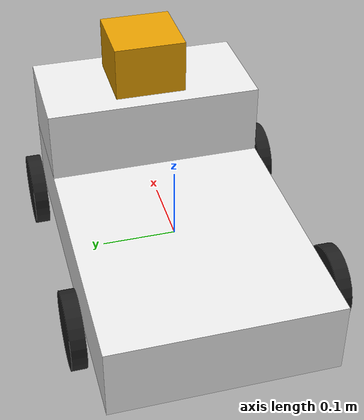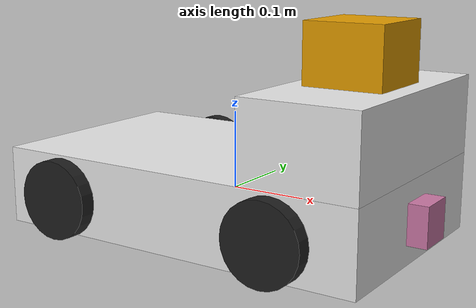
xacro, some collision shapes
<?xml version='1.0'?>

<robot name="my_robot" xmlns:xacro="http://www.ros.org/wiki/xacro">
<xacro:include filename="$(find my_robot)/urdf/my_robot.gazebo" />

  <gazebo reference="chassis">
    <material>Gazebo/White</material>
  </gazebo>

  <gazebo reference="camera">
    <material>Gazebo/Grey</material>
  </gazebo>

  <gazebo reference="left_front_wheel">
    <material>Gazebo/Black</material>
  </gazebo>

  <gazebo reference="right_front_wheel">
    <material>Gazebo/Black</material>
  </gazebo>

  <gazebo reference="left_rear_wheel">
    <material>Gazebo/Black</material>
  </gazebo>

  <gazebo reference="right_rear_wheel">
    <material>Gazebo/Black</material>
  </gazebo>

  <link name="robot_footprint"></link>

  <joint name="robot_footprint_joint" type="fixed">
    <origin xyz="0 0 0" rpy="0 0 0" />
    <parent link="robot_footprint"/>
    <child link="chassis" />
  </joint>

  <link name='chassis'>
    <pose>0 0 0.1 0 0 0</pose>

    <inertial>
      <mass value="15.0"/>
      <origin xyz="0.0 0 0" rpy=" 0 0 0"/>
      <inertia
          ixx="0.1" ixy="0" ixz="0"
          iyy="0.1" iyz="0"
          izz="0.1"
      />
    </inertial>

    <collision name='chassis_collision'>
      <origin xyz="0 0 0" rpy=" 0 0 0"/>
      <geometry>
        <box size=".5 .3 .1"/>
      </geometry>
    </collision>

    <visual name='chassis_visual'>
      <origin xyz="0 0 0" rpy=" 0 0 0"/>
      <geometry>
        <box size=".5 .3 .1"/>
      </geometry>
    </visual>

    <collision name='top_collision'>
      <origin xyz=".175 0 .1" rpy=" 0 0 0"/>
      <geometry>
        <box size=".15 .3 .1"/>
      </geometry>
    </collision>

    <visual name='top_visual'>
      <origin xyz=".175 0 .1" rpy=" 0 0 0"/>
      <geometry>
        <box size=".15 .3 .1"/>
      </geometry>
    </visual>
  </link>

  <link name='left_front_wheel'>
    <inertial>
      <mass value="5.0"/>
      <origin xyz="0.0 0 0" rpy=" 0 1.5707 1.5707"/>
      <inertia
          ixx="0.1" ixy="0" ixz="0"
          iyy="0.1" iyz="0"
          izz="0.1"
      />
    </inertial>

    <collision name='left_front_wheel_collision'>
      <origin xyz="0 0 0" rpy=" 0 1.5707 1.5707"/>
      <geometry>
        <cylinder length="0.02" radius="0.05"/>
      </geometry>
    </collision>

    <visual name='left_front_wheel_visual'>
      <origin xyz="0 0 0" rpy=" 0 1.5705 1.5707"/>
      <geometry>
        <cylinder length="0.02" radius="0.05"/>
      </geometry>
    </visual>
  </link>

  <joint type="continuous" name="left_front_wheel_hinge">
    <origin xyz="0.15 0.17 0" rpy="0 0 0"/>
    <child link="left_front_wheel"/>
    <parent link="chassis"/>
    <axis xyz="0 1 0" rpy="0 0 0"/>
    <limit effort="10000" velocity="1000"/>
    <dynamics damping="1.0" friction="1.0"/>
  </joint>

  <link name='left_rear_wheel'>
    <inertial>
      <mass value="5.0"/>
      <origin xyz="0.0 0 0" rpy=" 0 1.5707 1.5707"/>
      <inertia
          ixx="0.1" ixy="0" ixz="0"
          iyy="0.1" iyz="0"
          izz="0.1"
      />
    </inertial>

    <collision name='left_rear_wheel_collision'>
      <origin xyz="0 0 0" rpy=" 0 1.5707 1.5707"/>
      <geometry>
        <cylinder length="0.02" radius="0.05"/>
      </geometry>
    </collision>

    <visual name='left_rear_wheel_visual'>
      <origin xyz="0 0 0" rpy=" 0 1.5705 1.5707"/>
      <geometry>
        <cylinder length="0.02" radius="0.05"/>
      </geometry>
    </visual>
  </link>

  <joint type="continuous" name="left_rear_wheel_hinge">
    <origin xyz="-0.15 0.17 0" rpy="0 0 0"/>
    <child link="left_rear_wheel"/>
    <parent link="chassis"/>
    <axis xyz="0 1 0" rpy="0 0 0"/>
    <limit effort="10000" velocity="1000"/>
    <dynamics damping="1.0" friction="1.0"/>
  </joint>

  <link name='right_front_wheel'>
    <inertial>
      <mass value="5.0"/>
      <origin xyz="0.0 0 0" rpy=" 0 1.5707 1.5707"/>
      <inertia
          ixx="0.1" ixy="0" ixz="0"
          iyy="0.1" iyz="0"
          izz="0.1"
      />
    </inertial>

    <collision name='right_front_wheel_collision'>
      <origin xyz="0 0 0" rpy=" 0 1.5707 1.5707"/>
      <geometry>
        <cylinder length="0.02" radius="0.05"/>
      </geometry>
    </collision>

    <visual name='right_front_wheel_visual'>
      <origin xyz="0 0 0" rpy=" 0 1.5705 1.5707"/>
      <geometry>
        <cylinder length="0.02" radius="0.05"/>
      </geometry>
    </visual>
  </link>

  <joint type="continuous" name="right_front_wheel_hinge">
    <origin xyz="0.15 -0.17 0" rpy="0 0 0"/>
    <child link="right_front_wheel"/>
    <parent link="chassis"/>
    <axis xyz="0 1 0" rpy="0 0 0"/>
    <limit effort="10000" velocity="1000"/>
    <dynamics damping="1.0" friction="1.0"/>
  </joint>

  <link name='right_rear_wheel'>
    <inertial>
      <mass value="5.0"/>
      <origin xyz="0.0 0 0" rpy=" 0 1.5707 1.5707"/>
      <inertia
          ixx="0.1" ixy="0" ixz="0"
          iyy="0.1" iyz="0"
          izz="0.1"
      />
    </inertial>

    <collision name='right_rear_wheel_collision'>
      <origin xyz="0 0 0" rpy=" 0 1.5707 1.5707"/>
      <geometry>
        <cylinder length="0.02" radius="0.05"/>
      </geometry>
    </collision>

    <visual name='right_rear_wheel_visual'>
      <origin xyz="0 0 0" rpy=" 0 1.5705 1.5707"/>
      <geometry>
        <cylinder length="0.02" radius="0.05"/>
      </geometry>
    </visual>
  </link>

  <joint type="continuous" name="right_rear_wheel_hinge">
    <origin xyz="-0.15 -0.17 0" rpy="0 0 0"/>
    <child link="right_rear_wheel"/>
    <parent link="chassis"/>
    <axis xyz="0 1 0" rpy="0 0 0"/>
    <limit effort="10000" velocity="1000"/>
    <dynamics damping="1.0" friction="1.0"/>
  </joint>

  <link name="camera_link">
    <inertial>
      <mass value="0.1"/>
      <origin xyz="0 0 0" rpy=" 0 0 0"/>
      <inertia
          ixx="1e-6" ixy="0" ixz="0"
          iyy="1e-6" iyz="0"
          izz="1e-6"
      />
    </inertial>

    <collision name='camera_link_collision'>
      <origin xyz="0 0 0" rpy=" 0 0 0"/>
      <geometry>
        <box size="0.05 0.05 0.05"/>
      </geometry>
    </collision>

    <visual name='camera_link_visual'>
      <origin xyz="0 0 0" rpy=" 0 0 0"/>
      <geometry>
        <box size="0.05 0.05 0.05"/>
      </geometry>
    </visual>
  </link>

  <joint type="fixed" name="camera_joint">
    <origin xyz="0.25 0 0" rpy="0 0 0"/>
    <child link="camera_link"/>
    <parent link="chassis"/>
    <axis xyz="0 1 0" rpy="0 0 0"/>
  </joint>

  <joint name="camera_optical_joint" type="fixed">
    <origin xyz="0 0 0" rpy="-1.5707 0 -1.5707"/>
    <parent link="camera_link"/>
    <child link="camera_link_optical"/>
  </joint>

  <link name="camera_link_optical">
  </link>

  <link name="hokuyo">
    <inertial>
      <mass value="1e-5"/>
      <origin xyz="0 0 0" rpy=" 0 0 0"/>
      <inertia
          ixx="1e-6" ixy="0" ixz="0"
          iyy="1e-6" iyz="0"
          izz="1e-6"
      />
    </inertial>

    <collision name='hokuyo_collision'>
      <origin xyz="0 0 0" rpy=" 0 0 0"/>
      <geometry>
        <box size="0.1 0.1 0.1"/>
      </geometry>
    </collision>

    <visual name='hokuyo_visual'>
      <origin xyz="0 0 0" rpy=" 0 0 0"/>
      <geometry>
        <mesh filename="package://my_robot/meshes/hokuyo.dae"/>
      </geometry>
    </visual>
  </link>

  <joint type="fixed" name="hokuyo_joint">
    <origin xyz="0.175 0 0.175" rpy="0 0 0"/>
    <child link="hokuyo"/>
    <parent link="chassis"/>
    <axis xyz="0 1 0" rpy="0 0 0"/>
  </joint>

</robot>
